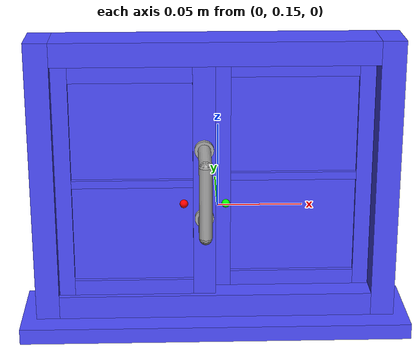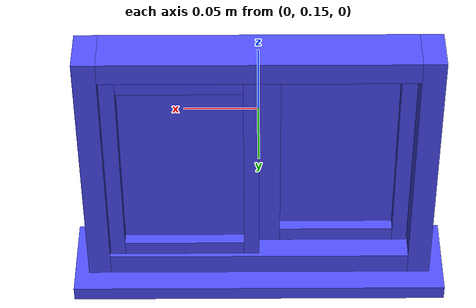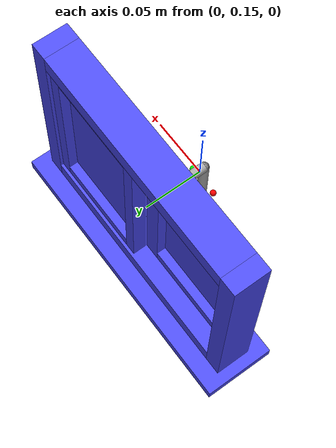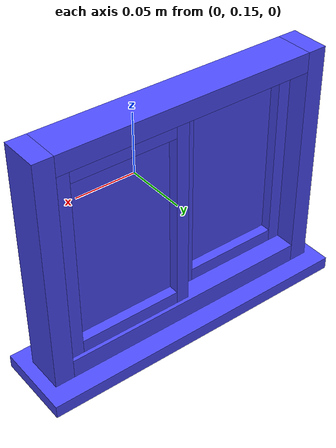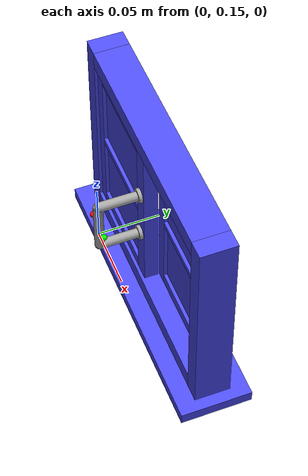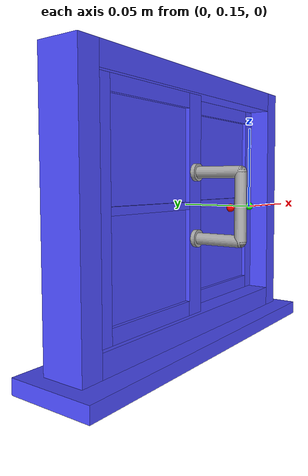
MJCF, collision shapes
<mujoco model="window">
    <compiler angle="radian" inertiafromgeom="auto" inertiagrouprange="4 5"/>
    <asset>
      <material name="window_col" rgba="0.3 0.3 1.0 0.5" shininess="0" specular="0"/>
      <material name="window_white" rgba=".65 .65 .65 1" shininess="1" reflectance=".7" specular=".5"/>
      <material name="window_red" rgba=".36 .26 .27 1" shininess="1" reflectance=".7" specular=".5"/>
      <material name="window_green" rgba=".51 .58 .55 1" shininess="1" reflectance=".7" specular=".5"/>
      <material name="window_black" rgba=".3 .3 .3 1" shininess="1" reflectance=".7" specular=".5"/>
      <material name="window_glass" rgba="0 .3 .4 .1" shininess="1" reflectance="1" specular=".5"/>

      <mesh file="meshes/window/window_h_base.stl" name="window_h_base" scale="0.5 0.5 0.5"/>
      <mesh file="meshes/window/window_h_frame.stl" name="window_h_frame" scale="0.5 0.5 0.5"/>
      <mesh file="meshes/window/windowa_h_frame.stl" name="windowa_h_frame" scale="0.5 0.5 0.5"/>
      <mesh file="meshes/window/windowa_h_glass.stl" name="windowa_h_glass" scale="0.5 0.5 0.5"/>
      <mesh file="meshes/window/windowb_h_frame.stl" name="windowb_h_frame" scale="0.5 0.5 0.5"/>
      <mesh file="meshes/window/windowb_h_glass.stl" name="windowb_h_glass" scale="0.5 0.5 0.5"/>

      <mesh file="meshes/window/window_base.stl" name="window_base" scale="0.5 0.5 0.5"/>
      <mesh file="meshes/window/window_frame.stl" name="window_frame" scale="0.5 0.5 0.5"/>
      <mesh file="meshes/window/windowa_frame.stl" name="windowa_frame" scale="0.5 0.5 0.5"/>
      <mesh file="meshes/window/windowa_glass.stl" name="windowa_glass" scale="0.5 0.5 0.5"/>
      <mesh file="meshes/window/windowb_frame.stl" name="windowb_frame" scale="0.5 0.5 0.5"/>
      <mesh file="meshes/window/windowb_glass.stl" name="windowb_glass" scale="0.5 0.5 0.5"/>
    </asset>

    <default>
      <default class="window_base">
          <joint armature="0.001" damping="2" limited="true"/>
          <geom conaffinity="0" contype="0" group="1" type="mesh"/>
          <position ctrllimited="true" ctrlrange="0 1.57"/>
      </default>
      <default class="window_viz">
        <geom condim="4" type="mesh"/>
      </default>
      <default class="window_col">
        <geom conaffinity="1" condim="3" contype="1" group="0" material="window_col" solimp="0.99 0.99 0.01" solref="0.01 1"/>
      </default>
    </default>

    <worldbody>
    <body>
        <body name="object" pos="0 0.2 0">
          <geom class="window_base" material="window_red" mesh="window_h_base" pos="0 0 -0.096" />
          <geom class="window_base" material="window_red" mesh="window_h_frame"/>
          <geom class="window_col" pos="-0.108 0 0" size="0.0075 0.015 0.0905" type="box" />
          <geom class="window_col" pos="0 0 -0.096" size="0.125 0.03 0.005" type="box" />
          <geom class="window_col" pos="0.108 0 0" size="0.0075 0.015 0.0905" type="box" />
          <geom class="window_col" pos="0 0 -0.083" size="0.1005 0.015 0.0075" type="box" />
          <geom class="window_col" pos="0 0 0.083" size="0.1005 0.015 0.0075" type="box" />
          <body name="windowb_a">
              <joint type="slide" range="0 .2" axis="1 0 0" name="window_slide"/>
              <geom class="window_base" material="window_white" euler="1.57 0 0" pos="-0.007 -0.014 0.0225" size="0.006 0.0015" type="cylinder" />
              <geom class="window_base" material="window_white" euler="1.57 0 0" pos="-0.007 -0.014 -0.0225" size="0.006 0.0015" type="cylinder" />
              <geom class="window_base" material="window_white" euler="1.57 0 0" pos="-0.007 -0.03 0.0225" size="0.004 0.0175" type="capsule" />
              <geom class="window_base" material="window_white" euler="1.57 0 0" pos="-0.007 -0.03 -0.0225" size="0.004 0.0175" type="capsule" />
              <geom class="window_base" material="window_white" pos="-0.007 -0.0475 0" size="0.004 0.0225" type="capsule" />
              <geom class="window_base" material="window_red" mesh="windowb_h_frame" pos="-0.052 -0.011 0" />
              <geom class="window_base" material="window_glass" mesh="windowb_h_glass" pos="-0.052 -0.009 0" />

              <geom class="window_col" euler="1.57 0 0" pos="-0.007 -0.014 0.0225" size="0.006 0.0015" type="cylinder" />
              <geom class="window_col" euler="1.57 0 0" pos="-0.007 -0.014 -0.0225" size="0.006 0.0015" type="cylinder" />
              <geom class="window_col" euler="1.57 0 0" pos="-0.007 -0.03 0.0225" size="0.004 0.0175" type="capsule" />
              <geom class="window_col" euler="1.57 0 0" pos="-0.007 -0.03 -0.0225" size="0.004 0.0175" type="capsule" />
              <geom class="window_col" pos="-0.007 -0.0475 0" size="0.004 0.0225" type="capsule" />
              <geom class="window_col" pos="-0.007 -0.0065 0" size="0.007 0.006 0.075" type="box" />
              <geom class="window_col" pos="-0.095 -0.0065 0" size="0.005 0.006 0.075" type="box" />
              <geom class="window_col" pos="-0.052 -0.0065 0.07" size="0.038 0.006 0.005" type="box" />
              <geom class="window_col" pos="-0.052 -0.0065 -0.07" size="0.038 0.006 0.005" type="box" />
              <geom class="window_col" pos="-0.052 -0.009 0" size="0.038 0.0005 0.065" type="box" />
              <geom class="window_col" pos="-0.052 -0.011 0" size="0.038 0.0015 0.0025" type="box" />
              <site class="window_base" name="handleOpenStart" pos="-0.02 -0.0475 0." size="0.0025" rgba="1 0 0 1"/>
              <site class="window_base" name="handleCloseStart" pos="0.005 -0.0475 0." size="0.0025" rgba="0 1 0 1"/>
          </body>
          <body name="windowb_b" pos="0.05 0.0065 0">
              <geom class="window_base" material="window_red" mesh="windowa_h_frame"/>
              <geom class="window_base" material="window_glass" mesh="windowa_h_glass" pos="0 -0.0025 0" />
              <geom class="window_col" pos="0 0 -0.07" size="0.04 0.006 0.005" type="box" />
              <geom class="window_col" pos="0 0 0.07" size="0.04 0.006 0.005" type="box" />
              <geom class="window_col" pos="0 -0.0025 0" size="0.04 0.0005 0.065" type="box" />
              <geom class="window_col" pos="0.0 -0.0045 0" size="0.04 0.0015 0.0025" type="box" />
              <geom class="window_col" pos="-0.045 0 0" size="0.005 0.006 0.075" type="box" />
              <geom class="window_col" pos="0.045 0 0" size="0.005 0.006 0.075" type="box" />
          </body>
        </body>
      <site rgba="0 0 0 0" size="0.00125" pos="0 0 -0.0060" name="bottom_site" />
      <site rgba="0 0 0 0" size="0.00125" pos="0 0 0.015" name="top_site" />
      <site rgba="0 0 0 0" size="0.00125" pos="0.00375 0.00375 0" name="horizontal_radius_site" />
    </body>
    </worldbody>
</mujoco>
